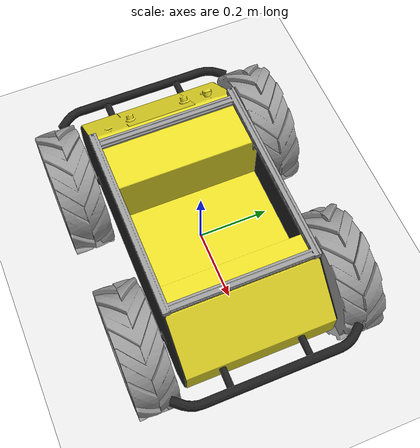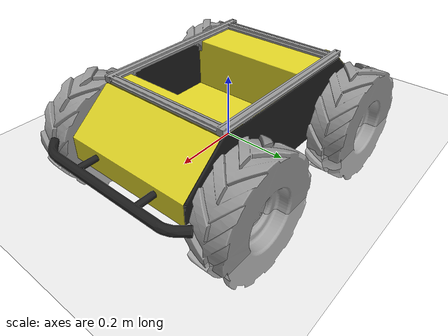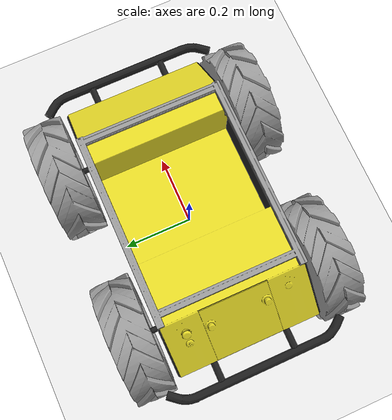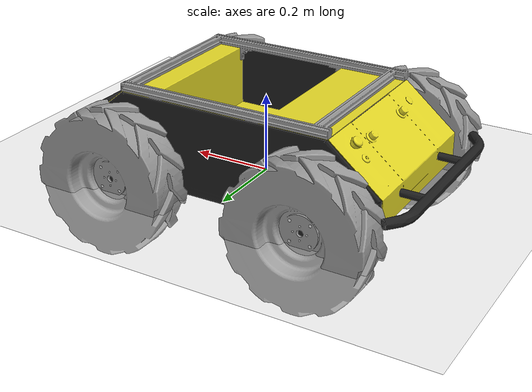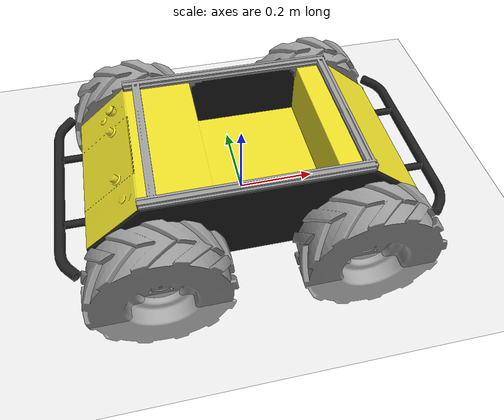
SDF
<sdf version="1.7">
 <world name="default">
  <light name="sun" type="directional">
   <pose>0 0 10 0 -0 0</pose>
   <diffuse>0.8 0.8 0.8 1</diffuse>
   <specular>0.2 0.2 0.2 1</specular>
   <attenuation>
    <range>1000</range>
    <constant>0.9</constant>
    <linear>0.01</linear>
    <quadratic>0.001</quadratic>
   </attenuation>
   <direction>-0.5 0.1 -0.9</direction>
   <spot><inner_angle>0</inner_angle><outer_angle>0</outer_angle><falloff>0</falloff></spot>
  </light>
  <model name="ground_plane">
   <static>1</static>
   <link name="link">
    <collision name="collision">
     <geometry><plane><normal>0 0 1</normal><size>100 100</size></plane></geometry>
     <surface><friction><ode><mu>100</mu><mu2>50</mu2></ode></friction></surface>
    </collision>
    <visual name="visual">
     <cast_shadows>0</cast_shadows>
     <geometry><plane><normal>0 0 1</normal><size>100 100</size></plane></geometry>
     <material>
      <script><uri>file://media/materials/scripts/gazebo.material</uri><name>Gazebo/Grey</name></script>
     </material>
    </visual>
   </link>
  </model>
  <gravity>0 0 -9.8</gravity>
  <magnetic_field>6e-06 2.3e-05 -4.2e-05</magnetic_field>
  <atmosphere type="adiabatic"/>
  <physics type="ode">
   <max_step_size>0.001</max_step_size>
   <real_time_factor>1</real_time_factor>
   <real_time_update_rate>1000</real_time_update_rate>
  </physics>
  <scene><ambient>0.4 0.4 0.4 1</ambient><background>0.7 0.7 0.7 1</background><shadows>1</shadows></scene>
  <spherical_coordinates>
   <surface_model>EARTH_WGS84</surface_model>
   <latitude_deg>0</latitude_deg>
   <longitude_deg>0</longitude_deg>
   <elevation>0</elevation>
   <heading_deg>0</heading_deg>
  </spherical_coordinates>
  <model name="rover_ardupilot">
   <frame name="husky::__model__" attached_to="husky::base_link">
    <pose relative_to="__model__">0 0 0 0 -0 0</pose>
   </frame>
   <link name="husky::base_link">
    <collision name="collision">
     <pose>0 0 0.1 0 -0 0</pose>
     <geometry><box><size>1.0074 0.5709 0.2675</size></box></geometry>
    </collision>
    <inertial>
     <mass>33.855</mass>
     <pose>-0.085613 -0.00084 0.238145 0 -0 0</pose>
     <inertia>
      <ixx>2.2343</ixx>
      <ixy>-0.023642</ixy>
      <ixz>0.275174</ixz>
      <iyy>3.42518</iyy>
      <iyz>0.00239624</iyz>
      <izz>2.1241</izz>
     </inertia>
    </inertial>
    <visual name="base">
     <geometry><mesh><uri>model://husky/meshes/base_link.stl</uri></mesh></geometry>
     <material><script><name>Gazebo/FlatBlack</name><uri>__default__</uri></script></material>
    </visual>
    <visual name="top_plate">
     <geometry><mesh><uri>model://husky/meshes/top_plate.stl</uri></mesh></geometry>
     <material><script><name>Gazebo/Yellow</name><uri>__default__</uri></script></material>
    </visual>
    <visual name="front_bumper">
     <pose>0.47 0 0.091 0 -0 0</pose>
     <geometry><mesh><uri>model://husky/meshes/bumper.stl</uri></mesh></geometry>
     <material><script><name>Gazebo/FlatBlack</name><uri>__default__</uri></script></material>
    </visual>
    <visual name="rear_bumper">
     <pose>-0.47 0 0.091 0 -0 3.141</pose>
     <geometry><mesh><uri>model://husky/meshes/bumper.stl</uri></mesh></geometry>
     <material><script><name>Gazebo/FlatBlack</name><uri>__default__</uri></script></material>
    </visual>
    <visual name="user_rail">
     <pose>0.272 0 0.245 0 -0 0</pose>
     <geometry><mesh><uri>model://husky/meshes/user_rail.stl</uri></mesh></geometry>
     <material><script><name>Gazebo/Grey</name><uri>__default__</uri></script></material>
    </visual>
    <pose relative_to="husky::__model__">0 0 0 0 -0 0</pose>
   </link>
   <link name="husky::back_left_wheel">
    <pose relative_to="husky::__model__">-0.256 0.285475 0.035 0 -0 0</pose>
    <inertial>
     <mass>2.6357</mass>
     <inertia>
      <ixx>0.0246688</ixx>
      <ixy>0</ixy>
      <ixz>0</ixz>
      <iyy>0.0246688</iyy>
      <iyz>0</iyz>
      <izz>0.0441058</izz>
     </inertia>
    </inertial>
    <collision name="back_left_wheel_collision">
     <pose>0 0 0 -1.5707 0 0</pose>
     <geometry><cylinder><radius>0.17775</radius><length>0.1143</length></cylinder></geometry>
     <surface>
      <friction><ode><mu>100000</mu><mu2>100000</mu2><slip1>0</slip1><slip2>0</slip2></ode></friction>
     </surface>
    </collision>
    <visual name="husky::back_left_wheel">
     <pose>0 0 0 -3.14159 0 0</pose>
     <geometry><mesh><uri>model://husky/meshes/wheel.stl</uri></mesh></geometry>
     <material><script><name>Gazebo/Grey</name><uri>__default__</uri></script></material>
    </visual>
   </link>
   <joint name="husky::back_left_joint" type="revolute">
    <parent>husky::base_link</parent>
    <child>husky::back_left_wheel</child>
    <axis>
     <xyz expressed_in="husky::__model__">0 1 0</xyz>
     <limit><lower>-1e+16</lower><upper>1e+16</upper></limit>
     <dynamics><spring_reference>0</spring_reference><spring_stiffness>0</spring_stiffness></dynamics>
    </axis>
    <physics><ode><limit><cfm>0</cfm><erp>0.9</erp></limit></ode></physics>
   </joint>
   <link name="husky::back_right_wheel">
    <pose relative_to="husky::__model__">-0.256 -0.285475 0.035 0 -0 0</pose>
    <inertial>
     <mass>2.6357</mass>
     <inertia>
      <ixx>0.0246688</ixx>
      <ixy>0</ixy>
      <ixz>0</ixz>
      <iyy>0.0246688</iyy>
      <iyz>0</iyz>
      <izz>0.0441058</izz>
     </inertia>
    </inertial>
    <collision name="back_right_wheel_collision">
     <pose>0 0 0 -1.5707 0 0</pose>
     <geometry><cylinder><radius>0.17775</radius><length>0.1143</length></cylinder></geometry>
     <surface>
      <friction><ode><mu>100000</mu><mu2>100000</mu2><slip1>0</slip1><slip2>0</slip2></ode></friction>
     </surface>
    </collision>
    <visual name="husky::back_right_wheel">
     <pose>0 0 0 -3.14159 0 0</pose>
     <geometry><mesh><uri>model://husky/meshes/wheel.stl</uri></mesh></geometry>
     <material><script><name>Gazebo/Grey</name><uri>__default__</uri></script></material>
    </visual>
   </link>
   <joint name="husky::back_right_joint" type="revolute">
    <parent>husky::base_link</parent>
    <child>husky::back_right_wheel</child>
    <axis>
     <xyz expressed_in="husky::__model__">0 1 0</xyz>
     <limit><lower>-1e+16</lower><upper>1e+16</upper></limit>
     <dynamics><spring_reference>0</spring_reference><spring_stiffness>0</spring_stiffness></dynamics>
    </axis>
    <physics><ode><limit><cfm>0</cfm><erp>0.9</erp></limit></ode></physics>
   </joint>
   <link name="husky::front_left_wheel">
    <pose relative_to="husky::__model__">0.256 0.285475 0.035 0 -0 0</pose>
    <inertial>
     <mass>2.6357</mass>
     <inertia>
      <ixx>0.0246688</ixx>
      <ixy>0</ixy>
      <ixz>0</ixz>
      <iyy>0.0246688</iyy>
      <iyz>0</iyz>
      <izz>0.0441058</izz>
     </inertia>
    </inertial>
    <collision name="front_left_wheel_collision">
     <pose>0 0 0 -1.5707 0 0</pose>
     <geometry><cylinder><radius>0.17775</radius><length>0.1143</length></cylinder></geometry>
     <surface>
      <friction><ode><mu>100000</mu><mu2>100000</mu2><slip1>0</slip1><slip2>0</slip2></ode></friction>
     </surface>
    </collision>
    <visual name="husky::front_left_wheel">
     <pose>0 0 0 -3.14159 0 0</pose>
     <geometry><mesh><uri>model://husky/meshes/wheel.stl</uri></mesh></geometry>
     <material><script><name>Gazebo/Grey</name><uri>__default__</uri></script></material>
    </visual>
   </link>
   <joint name="husky::front_left_joint" type="revolute">
    <parent>husky::base_link</parent>
    <child>husky::front_left_wheel</child>
    <axis>
     <xyz expressed_in="husky::__model__">0 1 0</xyz>
     <limit><lower>-1e+16</lower><upper>1e+16</upper></limit>
     <dynamics><spring_reference>0</spring_reference><spring_stiffness>0</spring_stiffness></dynamics>
    </axis>
    <physics><ode><limit><cfm>0</cfm><erp>0.9</erp></limit></ode></physics>
   </joint>
   <link name="husky::front_right_wheel">
    <pose relative_to="husky::__model__">0.256 -0.285475 0.035 0 -0 0</pose>
    <inertial>
     <mass>2.6357</mass>
     <inertia>
      <ixx>0.0246688</ixx>
      <ixy>0</ixy>
      <ixz>0</ixz>
      <iyy>0.0246688</iyy>
      <iyz>0</iyz>
      <izz>0.0441058</izz>
     </inertia>
    </inertial>
    <collision name="front_right_wheel_collision">
     <pose>0 0 0 -1.5707 0 0</pose>
     <geometry><cylinder><radius>0.17775</radius><length>0.1143</length></cylinder></geometry>
     <surface>
      <friction><ode><mu>100000</mu><mu2>100000</mu2><slip1>0</slip1><slip2>0</slip2></ode></friction>
     </surface>
    </collision>
    <visual name="husky::front_right_wheel">
     <pose>0 0 0 -3.14159 0 0</pose>
     <geometry><mesh><uri>model://husky/meshes/wheel.stl</uri></mesh></geometry>
     <material><script><name>Gazebo/Grey</name><uri>__default__</uri></script></material>
    </visual>
   </link>
   <joint name="husky::front_right_joint" type="revolute">
    <parent>husky::base_link</parent>
    <child>husky::front_right_wheel</child>
    <axis>
     <xyz expressed_in="husky::__model__">0 1 0</xyz>
     <limit><lower>-1e+16</lower><upper>1e+16</upper></limit>
     <dynamics><spring_reference>0</spring_reference><spring_stiffness>0</spring_stiffness></dynamics>
    </axis>
    <physics><ode><limit><cfm>0</cfm><erp>0.9</erp></limit></ode></physics>
   </joint>
   <plugin name="husky_diff_controller" filename="libhusky_gazebo_plugins.so">
    <alwaysOn>1</alwaysOn>
    <updateRate>100.0</updateRate>
    <backLeftJoint>husky::back_left_joint</backLeftJoint>
    <backRightJoint>husky::back_right_joint</backRightJoint>
    <frontLeftJoint>husky::front_left_joint</frontLeftJoint>
    <frontRightJoint>husky::front_right_joint</frontRightJoint>
    <wheelSeparation>0.5709</wheelSeparation>
    <wheelDiameter>0.3555</wheelDiameter>
    <torque>35</torque>
   </plugin>
   <link name="cam_link">
    <inertial>
     <mass>0.01</mass>
     <inertia><ixx>0.0001</ixx><iyy>0.0001</iyy><izz>0.0001</izz><ixy>0</ixy><ixz>0</ixz><iyz>0</iyz></inertia>
    </inertial>
    <sensor name="chase_cam" type="camera">
     <pose>-3 -1 1.4 0 0.37 0</pose>
     <camera>
      <horizontal_fov>1.2</horizontal_fov>
      <image><width>1920</width><height>1080</height></image>
      <clip><near>0.1</near><far>1000</far></clip>
     </camera>
     <always_on>0</always_on>
     <update_rate>60</update_rate>
     <visualize>0</visualize>
    </sensor>
   </link>
   <joint name="camera_mount" type="fixed">
    <child>cam_link</child>
    <parent>husky::base_link</parent>
    <axis><xyz>0 0 1</xyz><limit><upper>0</upper><lower>0</lower></limit></axis>
   </joint>
   <link name="imu_link">
    <inertial>
     <mass>0.015</mass>
     <inertia><ixx>1e-05</ixx><ixy>0</ixy><ixz>0</ixz><iyy>1e-05</iyy><iyz>0</iyz><izz>1e-05</izz></inertia>
    </inertial>
    <sensor name="imu_sensor" type="imu">
     <pose>0 0 0 -3.14159 -0 0</pose>
     <always_on>1</always_on>
     <update_rate>1000</update_rate>
    </sensor>
   </link>
   <joint name="imu_joint" type="revolute">
    <child>imu_link</child>
    <parent>husky::base_link</parent>
    <axis>
     <xyz expressed_in="__model__">1 0 0</xyz>
     <limit><lower>0</lower><upper>0</upper><effort>0</effort><velocity>0</velocity></limit>
     <dynamics>
      <damping>0.7</damping>
      <spring_reference>0</spring_reference>
      <spring_stiffness>0</spring_stiffness>
     </dynamics>
    </axis>
   </joint>
   <plugin name="ArduCopter_Plugin" filename="libArduPilotPlugin.so">
    <fdm_addr>127.0.0.1</fdm_addr>
    <fdm_port_in>9012</fdm_port_in>
    <fdm_port_out>9013</fdm_port_out>
    <modelXYZToAirplaneXForwardZDown>0 0 0 3.141593 0 0</modelXYZToAirplaneXForwardZDown>
    <gazeboXYZToNED>0 0 0 3.141593 0 0</gazeboXYZToNED>
    <imuName>rover_ardupilot::imu_link::imu_sensor</imuName>
    <connectionTimeoutMaxCount>5</connectionTimeoutMaxCount>
    <control channel="0">
     <type>VELOCITY</type>
     <offset>-0.5</offset>
     <p_gain>1</p_gain>
     <i_gain>0</i_gain>
     <d_gain>0</d_gain>
     <i_max>0</i_max>
     <i_min>0</i_min>
     <cmd_max>10</cmd_max>
     <cmd_min>-10</cmd_min>
     <jointName>husky::front_left_joint</jointName>
     <multiplier>70</multiplier>
    </control>
    <control channel="2">
     <type>VELOCITY</type>
     <offset>-0.5</offset>
     <p_gain>1</p_gain>
     <i_gain>0</i_gain>
     <d_gain>0</d_gain>
     <i_max>0</i_max>
     <i_min>0</i_min>
     <cmd_max>10</cmd_max>
     <cmd_min>-10</cmd_min>
     <jointName>husky::front_right_joint</jointName>
     <multiplier>70</multiplier>
    </control>
    <control channel="0">
     <type>VELOCITY</type>
     <offset>-0.5</offset>
     <p_gain>1</p_gain>
     <i_gain>0</i_gain>
     <d_gain>0</d_gain>
     <i_max>0</i_max>
     <i_min>0</i_min>
     <cmd_max>10</cmd_max>
     <cmd_min>-10</cmd_min>
     <jointName>husky::back_left_joint</jointName>
     <multiplier>70</multiplier>
    </control>
    <control channel="2">
     <type>VELOCITY</type>
     <offset>-0.5</offset>
     <p_gain>1</p_gain>
     <i_gain>0</i_gain>
     <d_gain>0</d_gain>
     <i_max>0</i_max>
     <i_min>0</i_min>
     <cmd_max>10</cmd_max>
     <cmd_min>-10</cmd_min>
     <jointName>husky::back_right_joint</jointName>
     <multiplier>70</multiplier>
    </control>
   </plugin>
   <plugin name="CMD" filename="libCMDPlugin.so">
    <IPAddress>127.0.0.1</IPAddress>
    <CMDPort>5006</CMDPort>
    <InitialPosition>3 4 0.1 0 0 0</InitialPosition>
   </plugin>
   <static>1</static>
  </model>
 </world>
</sdf>
